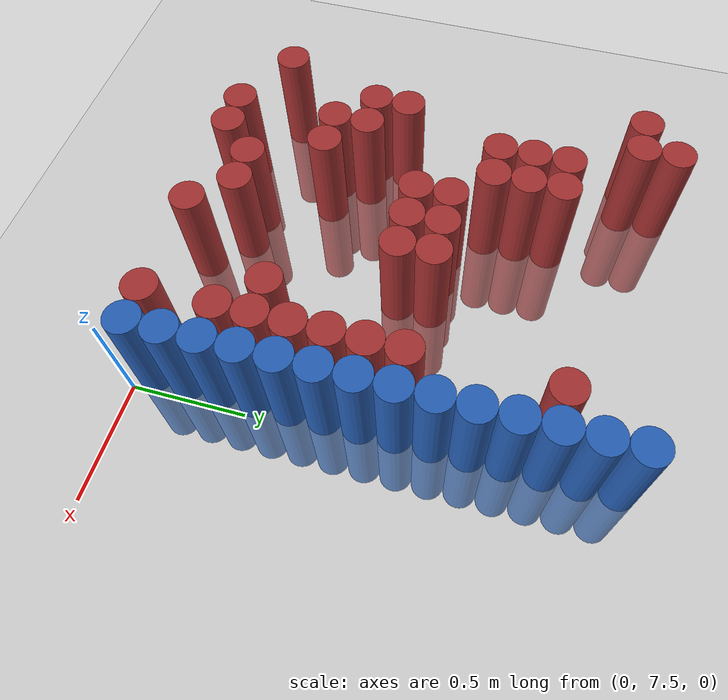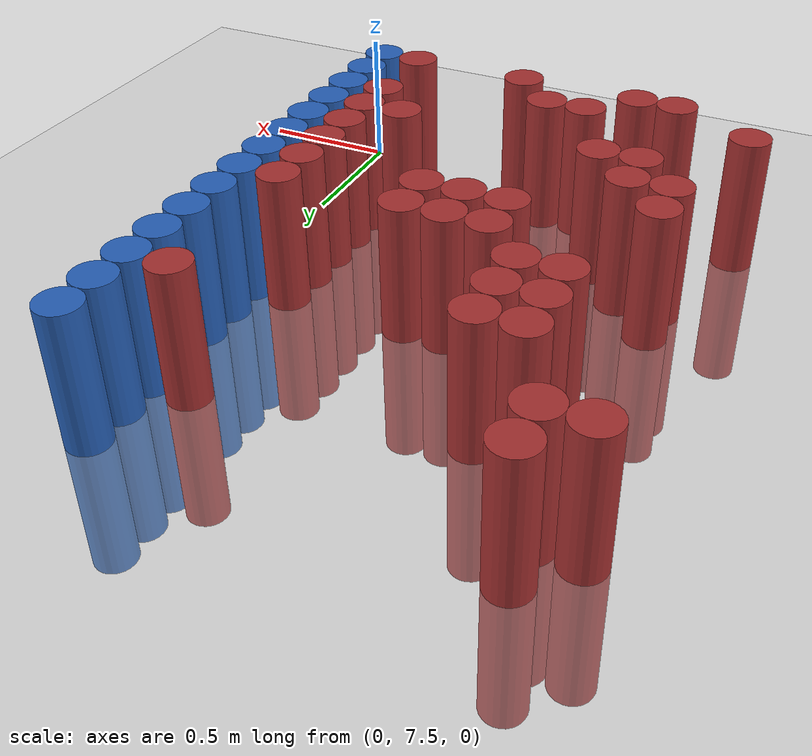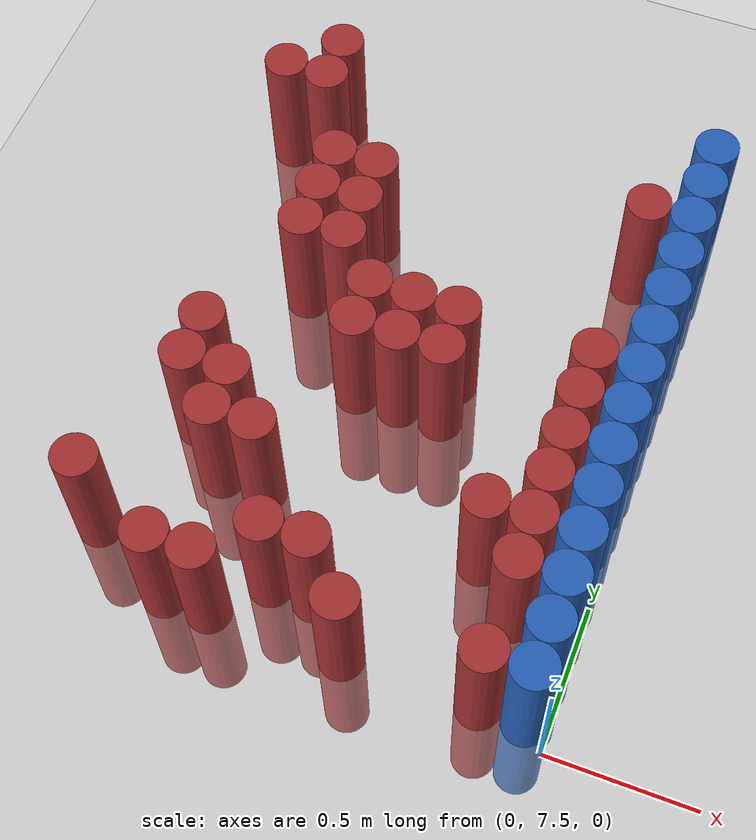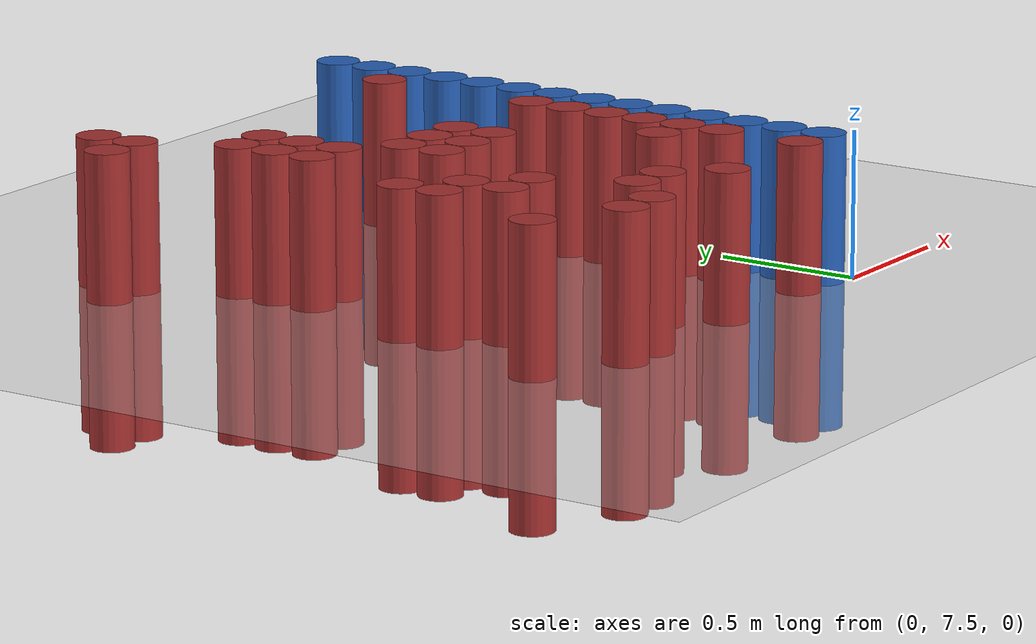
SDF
<sdf version="1.6">
 <world name="default">
  <model name="ground_plane">
   <static>1</static>
   <link name="link">
    <collision name="collision">
     <geometry><plane><normal>0 0 1</normal><size>100 100</size></plane></geometry>
     <surface><friction><ode><mu>100</mu><mu2>50</mu2></ode></friction></surface>
    </collision>
    <visual name="visual">
     <cast_shadows>0</cast_shadows>
     <geometry><plane><normal>0 0 1</normal><size>100 100</size></plane></geometry>
     <material>
      <script><uri>file://media/materials/scripts/gazebo.material</uri><name>Gazebo/Grey</name></script>
     </material>
    </visual>
   </link>
  </model>
  <model name="unit_cylinder_221">
   <static>1</static>
   <pose>-1.575000 7.725000 0.000000 0.000000 0.000000 0.000000</pose>
   <link name="link">
    <inertial>
     <mass>1</mass>
     <inertia><ixx>0.145833</ixx><ixy>0</ixy><ixz>0</ixz><iyy>0.145833</iyy><iyz>0</iyz><izz>0.125</izz></inertia>
    </inertial>
    <collision name="collision">
     <geometry><cylinder><radius>0.075000</radius><length>1</length></cylinder></geometry>
    </collision>
    <visual name="visual">
     <geometry><cylinder><radius>0.075000</radius><length>1</length></cylinder></geometry>
     <material>
      <ambient>0.648000 0.192000 0.192000 1</ambient>
      <diffuse>0.648000 0.192000 0.192000 1</diffuse>
     </material>
     <material>
      <script><name>Gazebo/Grey</name><uri>file://media/materials/scripts/gazebo.material</uri></script>
     </material>
    </visual>
   </link>
  </model>
  <model name="unit_cylinder_222">
   <static>1</static>
   <pose>-1.575000 9.375000 0.000000 0.000000 0.000000 0.000000</pose>
   <link name="link">
    <inertial>
     <mass>1</mass>
     <inertia><ixx>0.145833</ixx><ixy>0</ixy><ixz>0</ixz><iyy>0.145833</iyy><iyz>0</iyz><izz>0.125</izz></inertia>
    </inertial>
    <collision name="collision">
     <geometry><cylinder><radius>0.075000</radius><length>1</length></cylinder></geometry>
    </collision>
    <visual name="visual">
     <geometry><cylinder><radius>0.075000</radius><length>1</length></cylinder></geometry>
     <material>
      <ambient>0.648000 0.192000 0.192000 1</ambient>
      <diffuse>0.648000 0.192000 0.192000 1</diffuse>
     </material>
     <material>
      <script><name>Gazebo/Grey</name><uri>file://media/materials/scripts/gazebo.material</uri></script>
     </material>
    </visual>
   </link>
  </model>
  <model name="unit_cylinder_229">
   <static>1</static>
   <pose>-1.425000 8.175000 0.000000 0.000000 0.000000 0.000000</pose>
   <link name="link">
    <inertial>
     <mass>1</mass>
     <inertia><ixx>0.145833</ixx><ixy>0</ixy><ixz>0</ixz><iyy>0.145833</iyy><iyz>0</iyz><izz>0.125</izz></inertia>
    </inertial>
    <collision name="collision">
     <geometry><cylinder><radius>0.075000</radius><length>1</length></cylinder></geometry>
    </collision>
    <visual name="visual">
     <geometry><cylinder><radius>0.075000</radius><length>1</length></cylinder></geometry>
     <material>
      <ambient>0.648000 0.192000 0.192000 1</ambient>
      <diffuse>0.648000 0.192000 0.192000 1</diffuse>
     </material>
     <material>
      <script><name>Gazebo/Grey</name><uri>file://media/materials/scripts/gazebo.material</uri></script>
     </material>
    </visual>
   </link>
  </model>
  <model name="unit_cylinder_230">
   <static>1</static>
   <pose>-1.425000 8.325000 0.000000 0.000000 0.000000 0.000000</pose>
   <link name="link">
    <inertial>
     <mass>1</mass>
     <inertia><ixx>0.145833</ixx><ixy>0</ixy><ixz>0</ixz><iyy>0.145833</iyy><iyz>0</iyz><izz>0.125</izz></inertia>
    </inertial>
    <collision name="collision">
     <geometry><cylinder><radius>0.075000</radius><length>1</length></cylinder></geometry>
    </collision>
    <visual name="visual">
     <geometry><cylinder><radius>0.075000</radius><length>1</length></cylinder></geometry>
     <material>
      <ambient>0.648000 0.192000 0.192000 1</ambient>
      <diffuse>0.648000 0.192000 0.192000 1</diffuse>
     </material>
     <material>
      <script><name>Gazebo/Grey</name><uri>file://media/materials/scripts/gazebo.material</uri></script>
     </material>
    </visual>
   </link>
  </model>
  <model name="unit_cylinder_231">
   <static>1</static>
   <pose>-1.425000 9.375000 0.000000 0.000000 0.000000 0.000000</pose>
   <link name="link">
    <inertial>
     <mass>1</mass>
     <inertia><ixx>0.145833</ixx><ixy>0</ixy><ixz>0</ixz><iyy>0.145833</iyy><iyz>0</iyz><izz>0.125</izz></inertia>
    </inertial>
    <collision name="collision">
     <geometry><cylinder><radius>0.075000</radius><length>1</length></cylinder></geometry>
    </collision>
    <visual name="visual">
     <geometry><cylinder><radius>0.075000</radius><length>1</length></cylinder></geometry>
     <material>
      <ambient>0.648000 0.192000 0.192000 1</ambient>
      <diffuse>0.648000 0.192000 0.192000 1</diffuse>
     </material>
     <material>
      <script><name>Gazebo/Grey</name><uri>file://media/materials/scripts/gazebo.material</uri></script>
     </material>
    </visual>
   </link>
  </model>
  <model name="unit_cylinder_232">
   <static>1</static>
   <pose>-1.425000 9.525000 0.000000 0.000000 0.000000 0.000000</pose>
   <link name="link">
    <inertial>
     <mass>1</mass>
     <inertia><ixx>0.145833</ixx><ixy>0</ixy><ixz>0</ixz><iyy>0.145833</iyy><iyz>0</iyz><izz>0.125</izz></inertia>
    </inertial>
    <collision name="collision">
     <geometry><cylinder><radius>0.075000</radius><length>1</length></cylinder></geometry>
    </collision>
    <visual name="visual">
     <geometry><cylinder><radius>0.075000</radius><length>1</length></cylinder></geometry>
     <material>
      <ambient>0.648000 0.192000 0.192000 1</ambient>
      <diffuse>0.648000 0.192000 0.192000 1</diffuse>
     </material>
     <material>
      <script><name>Gazebo/Grey</name><uri>file://media/materials/scripts/gazebo.material</uri></script>
     </material>
    </visual>
   </link>
  </model>
  <model name="unit_cylinder_238">
   <static>1</static>
   <pose>-1.275000 7.575000 0.000000 0.000000 0.000000 0.000000</pose>
   <link name="link">
    <inertial>
     <mass>1</mass>
     <inertia><ixx>0.145833</ixx><ixy>0</ixy><ixz>0</ixz><iyy>0.145833</iyy><iyz>0</iyz><izz>0.125</izz></inertia>
    </inertial>
    <collision name="collision">
     <geometry><cylinder><radius>0.075000</radius><length>1</length></cylinder></geometry>
    </collision>
    <visual name="visual">
     <geometry><cylinder><radius>0.075000</radius><length>1</length></cylinder></geometry>
     <material>
      <ambient>0.648000 0.192000 0.192000 1</ambient>
      <diffuse>0.648000 0.192000 0.192000 1</diffuse>
     </material>
     <material>
      <script><name>Gazebo/Grey</name><uri>file://media/materials/scripts/gazebo.material</uri></script>
     </material>
    </visual>
   </link>
  </model>
  <model name="unit_cylinder_239">
   <static>1</static>
   <pose>-1.275000 8.025000 0.000000 0.000000 0.000000 0.000000</pose>
   <link name="link">
    <inertial>
     <mass>1</mass>
     <inertia><ixx>0.145833</ixx><ixy>0</ixy><ixz>0</ixz><iyy>0.145833</iyy><iyz>0</iyz><izz>0.125</izz></inertia>
    </inertial>
    <collision name="collision">
     <geometry><cylinder><radius>0.075000</radius><length>1</length></cylinder></geometry>
    </collision>
    <visual name="visual">
     <geometry><cylinder><radius>0.075000</radius><length>1</length></cylinder></geometry>
     <material>
      <ambient>0.648000 0.192000 0.192000 1</ambient>
      <diffuse>0.648000 0.192000 0.192000 1</diffuse>
     </material>
     <material>
      <script><name>Gazebo/Grey</name><uri>file://media/materials/scripts/gazebo.material</uri></script>
     </material>
    </visual>
   </link>
  </model>
  <model name="unit_cylinder_240">
   <static>1</static>
   <pose>-1.275000 8.175000 0.000000 0.000000 0.000000 0.000000</pose>
   <link name="link">
    <inertial>
     <mass>1</mass>
     <inertia><ixx>0.145833</ixx><ixy>0</ixy><ixz>0</ixz><iyy>0.145833</iyy><iyz>0</iyz><izz>0.125</izz></inertia>
    </inertial>
    <collision name="collision">
     <geometry><cylinder><radius>0.075000</radius><length>1</length></cylinder></geometry>
    </collision>
    <visual name="visual">
     <geometry><cylinder><radius>0.075000</radius><length>1</length></cylinder></geometry>
     <material>
      <ambient>0.648000 0.192000 0.192000 1</ambient>
      <diffuse>0.648000 0.192000 0.192000 1</diffuse>
     </material>
     <material>
      <script><name>Gazebo/Grey</name><uri>file://media/materials/scripts/gazebo.material</uri></script>
     </material>
    </visual>
   </link>
  </model>
  <model name="unit_cylinder_241">
   <static>1</static>
   <pose>-1.275000 8.775000 0.000000 0.000000 0.000000 0.000000</pose>
   <link name="link">
    <inertial>
     <mass>1</mass>
     <inertia><ixx>0.145833</ixx><ixy>0</ixy><ixz>0</ixz><iyy>0.145833</iyy><iyz>0</iyz><izz>0.125</izz></inertia>
    </inertial>
    <collision name="collision">
     <geometry><cylinder><radius>0.075000</radius><length>1</length></cylinder></geometry>
    </collision>
    <visual name="visual">
     <geometry><cylinder><radius>0.075000</radius><length>1</length></cylinder></geometry>
     <material>
      <ambient>0.648000 0.192000 0.192000 1</ambient>
      <diffuse>0.648000 0.192000 0.192000 1</diffuse>
     </material>
     <material>
      <script><name>Gazebo/Grey</name><uri>file://media/materials/scripts/gazebo.material</uri></script>
     </material>
    </visual>
   </link>
  </model>
  <model name="unit_cylinder_242">
   <static>1</static>
   <pose>-1.275000 8.925000 0.000000 0.000000 0.000000 0.000000</pose>
   <link name="link">
    <inertial>
     <mass>1</mass>
     <inertia><ixx>0.145833</ixx><ixy>0</ixy><ixz>0</ixz><iyy>0.145833</iyy><iyz>0</iyz><izz>0.125</izz></inertia>
    </inertial>
    <collision name="collision">
     <geometry><cylinder><radius>0.075000</radius><length>1</length></cylinder></geometry>
    </collision>
    <visual name="visual">
     <geometry><cylinder><radius>0.075000</radius><length>1</length></cylinder></geometry>
     <material>
      <ambient>0.648000 0.192000 0.192000 1</ambient>
      <diffuse>0.648000 0.192000 0.192000 1</diffuse>
     </material>
     <material>
      <script><name>Gazebo/Grey</name><uri>file://media/materials/scripts/gazebo.material</uri></script>
     </material>
    </visual>
   </link>
  </model>
  <model name="unit_cylinder_243">
   <static>1</static>
   <pose>-1.275000 9.075000 0.000000 0.000000 0.000000 0.000000</pose>
   <link name="link">
    <inertial>
     <mass>1</mass>
     <inertia><ixx>0.145833</ixx><ixy>0</ixy><ixz>0</ixz><iyy>0.145833</iyy><iyz>0</iyz><izz>0.125</izz></inertia>
    </inertial>
    <collision name="collision">
     <geometry><cylinder><radius>0.075000</radius><length>1</length></cylinder></geometry>
    </collision>
    <visual name="visual">
     <geometry><cylinder><radius>0.075000</radius><length>1</length></cylinder></geometry>
     <material>
      <ambient>0.648000 0.192000 0.192000 1</ambient>
      <diffuse>0.648000 0.192000 0.192000 1</diffuse>
     </material>
     <material>
      <script><name>Gazebo/Grey</name><uri>file://media/materials/scripts/gazebo.material</uri></script>
     </material>
    </visual>
   </link>
  </model>
  <model name="unit_cylinder_251">
   <static>1</static>
   <pose>-1.125000 7.575000 0.000000 0.000000 0.000000 0.000000</pose>
   <link name="link">
    <inertial>
     <mass>1</mass>
     <inertia><ixx>0.145833</ixx><ixy>0</ixy><ixz>0</ixz><iyy>0.145833</iyy><iyz>0</iyz><izz>0.125</izz></inertia>
    </inertial>
    <collision name="collision">
     <geometry><cylinder><radius>0.075000</radius><length>1</length></cylinder></geometry>
    </collision>
    <visual name="visual">
     <geometry><cylinder><radius>0.075000</radius><length>1</length></cylinder></geometry>
     <material>
      <ambient>0.648000 0.192000 0.192000 1</ambient>
      <diffuse>0.648000 0.192000 0.192000 1</diffuse>
     </material>
     <material>
      <script><name>Gazebo/Grey</name><uri>file://media/materials/scripts/gazebo.material</uri></script>
     </material>
    </visual>
   </link>
  </model>
  <model name="unit_cylinder_252">
   <static>1</static>
   <pose>-1.125000 8.025000 0.000000 0.000000 0.000000 0.000000</pose>
   <link name="link">
    <inertial>
     <mass>1</mass>
     <inertia><ixx>0.145833</ixx><ixy>0</ixy><ixz>0</ixz><iyy>0.145833</iyy><iyz>0</iyz><izz>0.125</izz></inertia>
    </inertial>
    <collision name="collision">
     <geometry><cylinder><radius>0.075000</radius><length>1</length></cylinder></geometry>
    </collision>
    <visual name="visual">
     <geometry><cylinder><radius>0.075000</radius><length>1</length></cylinder></geometry>
     <material>
      <ambient>0.648000 0.192000 0.192000 1</ambient>
      <diffuse>0.648000 0.192000 0.192000 1</diffuse>
     </material>
     <material>
      <script><name>Gazebo/Grey</name><uri>file://media/materials/scripts/gazebo.material</uri></script>
     </material>
    </visual>
   </link>
  </model>
  <model name="unit_cylinder_253">
   <static>1</static>
   <pose>-1.125000 8.775000 0.000000 0.000000 0.000000 0.000000</pose>
   <link name="link">
    <inertial>
     <mass>1</mass>
     <inertia><ixx>0.145833</ixx><ixy>0</ixy><ixz>0</ixz><iyy>0.145833</iyy><iyz>0</iyz><izz>0.125</izz></inertia>
    </inertial>
    <collision name="collision">
     <geometry><cylinder><radius>0.075000</radius><length>1</length></cylinder></geometry>
    </collision>
    <visual name="visual">
     <geometry><cylinder><radius>0.075000</radius><length>1</length></cylinder></geometry>
     <material>
      <ambient>0.648000 0.192000 0.192000 1</ambient>
      <diffuse>0.648000 0.192000 0.192000 1</diffuse>
     </material>
     <material>
      <script><name>Gazebo/Grey</name><uri>file://media/materials/scripts/gazebo.material</uri></script>
     </material>
    </visual>
   </link>
  </model>
  <model name="unit_cylinder_254">
   <static>1</static>
   <pose>-1.125000 8.925000 0.000000 0.000000 0.000000 0.000000</pose>
   <link name="link">
    <inertial>
     <mass>1</mass>
     <inertia><ixx>0.145833</ixx><ixy>0</ixy><ixz>0</ixz><iyy>0.145833</iyy><iyz>0</iyz><izz>0.125</izz></inertia>
    </inertial>
    <collision name="collision">
     <geometry><cylinder><radius>0.075000</radius><length>1</length></cylinder></geometry>
    </collision>
    <visual name="visual">
     <geometry><cylinder><radius>0.075000</radius><length>1</length></cylinder></geometry>
     <material>
      <ambient>0.648000 0.192000 0.192000 1</ambient>
      <diffuse>0.648000 0.192000 0.192000 1</diffuse>
     </material>
     <material>
      <script><name>Gazebo/Grey</name><uri>file://media/materials/scripts/gazebo.material</uri></script>
     </material>
    </visual>
   </link>
  </model>
  <model name="unit_cylinder_255">
   <static>1</static>
   <pose>-1.125000 9.075000 0.000000 0.000000 0.000000 0.000000</pose>
   <link name="link">
    <inertial>
     <mass>1</mass>
     <inertia><ixx>0.145833</ixx><ixy>0</ixy><ixz>0</ixz><iyy>0.145833</iyy><iyz>0</iyz><izz>0.125</izz></inertia>
    </inertial>
    <collision name="collision">
     <geometry><cylinder><radius>0.075000</radius><length>1</length></cylinder></geometry>
    </collision>
    <visual name="visual">
     <geometry><cylinder><radius>0.075000</radius><length>1</length></cylinder></geometry>
     <material>
      <ambient>0.648000 0.192000 0.192000 1</ambient>
      <diffuse>0.648000 0.192000 0.192000 1</diffuse>
     </material>
     <material>
      <script><name>Gazebo/Grey</name><uri>file://media/materials/scripts/gazebo.material</uri></script>
     </material>
    </visual>
   </link>
  </model>
  <model name="unit_cylinder_263">
   <static>1</static>
   <pose>-0.975000 7.725000 0.000000 0.000000 0.000000 0.000000</pose>
   <link name="link">
    <inertial>
     <mass>1</mass>
     <inertia><ixx>0.145833</ixx><ixy>0</ixy><ixz>0</ixz><iyy>0.145833</iyy><iyz>0</iyz><izz>0.125</izz></inertia>
    </inertial>
    <collision name="collision">
     <geometry><cylinder><radius>0.075000</radius><length>1</length></cylinder></geometry>
    </collision>
    <visual name="visual">
     <geometry><cylinder><radius>0.075000</radius><length>1</length></cylinder></geometry>
     <material>
      <ambient>0.648000 0.192000 0.192000 1</ambient>
      <diffuse>0.648000 0.192000 0.192000 1</diffuse>
     </material>
     <material>
      <script><name>Gazebo/Grey</name><uri>file://media/materials/scripts/gazebo.material</uri></script>
     </material>
    </visual>
   </link>
  </model>
  <model name="unit_cylinder_264">
   <static>1</static>
   <pose>-0.975000 8.475000 0.000000 0.000000 0.000000 0.000000</pose>
   <link name="link">
    <inertial>
     <mass>1</mass>
     <inertia><ixx>0.145833</ixx><ixy>0</ixy><ixz>0</ixz><iyy>0.145833</iyy><iyz>0</iyz><izz>0.125</izz></inertia>
    </inertial>
    <collision name="collision">
     <geometry><cylinder><radius>0.075000</radius><length>1</length></cylinder></geometry>
    </collision>
    <visual name="visual">
     <geometry><cylinder><radius>0.075000</radius><length>1</length></cylinder></geometry>
     <material>
      <ambient>0.648000 0.192000 0.192000 1</ambient>
      <diffuse>0.648000 0.192000 0.192000 1</diffuse>
     </material>
     <material>
      <script><name>Gazebo/Grey</name><uri>file://media/materials/scripts/gazebo.material</uri></script>
     </material>
    </visual>
   </link>
  </model>
  <model name="unit_cylinder_265">
   <static>1</static>
   <pose>-0.975000 8.625000 0.000000 0.000000 0.000000 0.000000</pose>
   <link name="link">
    <inertial>
     <mass>1</mass>
     <inertia><ixx>0.145833</ixx><ixy>0</ixy><ixz>0</ixz><iyy>0.145833</iyy><iyz>0</iyz><izz>0.125</izz></inertia>
    </inertial>
    <collision name="collision">
     <geometry><cylinder><radius>0.075000</radius><length>1</length></cylinder></geometry>
    </collision>
    <visual name="visual">
     <geometry><cylinder><radius>0.075000</radius><length>1</length></cylinder></geometry>
     <material>
      <ambient>0.648000 0.192000 0.192000 1</ambient>
      <diffuse>0.648000 0.192000 0.192000 1</diffuse>
     </material>
     <material>
      <script><name>Gazebo/Grey</name><uri>file://media/materials/scripts/gazebo.material</uri></script>
     </material>
    </visual>
   </link>
  </model>
  <model name="unit_cylinder_270">
   <static>1</static>
   <pose>-0.825000 7.725000 0.000000 0.000000 0.000000 0.000000</pose>
   <link name="link">
    <inertial>
     <mass>1</mass>
     <inertia><ixx>0.145833</ixx><ixy>0</ixy><ixz>0</ixz><iyy>0.145833</iyy><iyz>0</iyz><izz>0.125</izz></inertia>
    </inertial>
    <collision name="collision">
     <geometry><cylinder><radius>0.075000</radius><length>1</length></cylinder></geometry>
    </collision>
    <visual name="visual">
     <geometry><cylinder><radius>0.075000</radius><length>1</length></cylinder></geometry>
     <material>
      <ambient>0.648000 0.192000 0.192000 1</ambient>
      <diffuse>0.648000 0.192000 0.192000 1</diffuse>
     </material>
     <material>
      <script><name>Gazebo/Grey</name><uri>file://media/materials/scripts/gazebo.material</uri></script>
     </material>
    </visual>
   </link>
  </model>
  <model name="unit_cylinder_271">
   <static>1</static>
   <pose>-0.825000 8.475000 0.000000 0.000000 0.000000 0.000000</pose>
   <link name="link">
    <inertial>
     <mass>1</mass>
     <inertia><ixx>0.145833</ixx><ixy>0</ixy><ixz>0</ixz><iyy>0.145833</iyy><iyz>0</iyz><izz>0.125</izz></inertia>
    </inertial>
    <collision name="collision">
     <geometry><cylinder><radius>0.075000</radius><length>1</length></cylinder></geometry>
    </collision>
    <visual name="visual">
     <geometry><cylinder><radius>0.075000</radius><length>1</length></cylinder></geometry>
     <material>
      <ambient>0.648000 0.192000 0.192000 1</ambient>
      <diffuse>0.648000 0.192000 0.192000 1</diffuse>
     </material>
     <material>
      <script><name>Gazebo/Grey</name><uri>file://media/materials/scripts/gazebo.material</uri></script>
     </material>
    </visual>
   </link>
  </model>
  <model name="unit_cylinder_272">
   <static>1</static>
   <pose>-0.825000 8.625000 0.000000 0.000000 0.000000 0.000000</pose>
   <link name="link">
    <inertial>
     <mass>1</mass>
     <inertia><ixx>0.145833</ixx><ixy>0</ixy><ixz>0</ixz><iyy>0.145833</iyy><iyz>0</iyz><izz>0.125</izz></inertia>
    </inertial>
    <collision name="collision">
     <geometry><cylinder><radius>0.075000</radius><length>1</length></cylinder></geometry>
    </collision>
    <visual name="visual">
     <geometry><cylinder><radius>0.075000</radius><length>1</length></cylinder></geometry>
     <material>
      <ambient>0.648000 0.192000 0.192000 1</ambient>
      <diffuse>0.648000 0.192000 0.192000 1</diffuse>
     </material>
     <material>
      <script><name>Gazebo/Grey</name><uri>file://media/materials/scripts/gazebo.material</uri></script>
     </material>
    </visual>
   </link>
  </model>
  <model name="unit_cylinder_278">
   <static>1</static>
   <pose>-0.675000 7.575000 0.000000 0.000000 0.000000 0.000000</pose>
   <link name="link">
    <inertial>
     <mass>1</mass>
     <inertia><ixx>0.145833</ixx><ixy>0</ixy><ixz>0</ixz><iyy>0.145833</iyy><iyz>0</iyz><izz>0.125</izz></inertia>
    </inertial>
    <collision name="collision">
     <geometry><cylinder><radius>0.075000</radius><length>1</length></cylinder></geometry>
    </collision>
    <visual name="visual">
     <geometry><cylinder><radius>0.075000</radius><length>1</length></cylinder></geometry>
     <material>
      <ambient>0.648000 0.192000 0.192000 1</ambient>
      <diffuse>0.648000 0.192000 0.192000 1</diffuse>
     </material>
     <material>
      <script><name>Gazebo/Grey</name><uri>file://media/materials/scripts/gazebo.material</uri></script>
     </material>
    </visual>
   </link>
  </model>
  <model name="unit_cylinder_279">
   <static>1</static>
   <pose>-0.675000 8.475000 0.000000 0.000000 0.000000 0.000000</pose>
   <link name="link">
    <inertial>
     <mass>1</mass>
     <inertia><ixx>0.145833</ixx><ixy>0</ixy><ixz>0</ixz><iyy>0.145833</iyy><iyz>0</iyz><izz>0.125</izz></inertia>
    </inertial>
    <collision name="collision">
     <geometry><cylinder><radius>0.075000</radius><length>1</length></cylinder></geometry>
    </collision>
    <visual name="visual">
     <geometry><cylinder><radius>0.075000</radius><length>1</length></cylinder></geometry>
     <material>
      <ambient>0.648000 0.192000 0.192000 1</ambient>
      <diffuse>0.648000 0.192000 0.192000 1</diffuse>
     </material>
     <material>
      <script><name>Gazebo/Grey</name><uri>file://media/materials/scripts/gazebo.material</uri></script>
     </material>
    </visual>
   </link>
  </model>
  <model name="unit_cylinder_280">
   <static>1</static>
   <pose>-0.675000 8.625000 0.000000 0.000000 0.000000 0.000000</pose>
   <link name="link">
    <inertial>
     <mass>1</mass>
     <inertia><ixx>0.145833</ixx><ixy>0</ixy><ixz>0</ixz><iyy>0.145833</iyy><iyz>0</iyz><izz>0.125</izz></inertia>
    </inertial>
    <collision name="collision">
     <geometry><cylinder><radius>0.075000</radius><length>1</length></cylinder></geometry>
    </collision>
    <visual name="visual">
     <geometry><cylinder><radius>0.075000</radius><length>1</length></cylinder></geometry>
     <material>
      <ambient>0.648000 0.192000 0.192000 1</ambient>
      <diffuse>0.648000 0.192000 0.192000 1</diffuse>
     </material>
     <material>
      <script><name>Gazebo/Grey</name><uri>file://media/materials/scripts/gazebo.material</uri></script>
     </material>
    </visual>
   </link>
  </model>
  <model name="unit_cylinder_295">
   <static>1</static>
   <pose>-0.375000 8.025000 0.000000 0.000000 0.000000 0.000000</pose>
   <link name="link">
    <inertial>
     <mass>1</mass>
     <inertia><ixx>0.145833</ixx><ixy>0</ixy><ixz>0</ixz><iyy>0.145833</iyy><iyz>0</iyz><izz>0.125</izz></inertia>
    </inertial>
    <collision name="collision">
     <geometry><cylinder><radius>0.075000</radius><length>1</length></cylinder></geometry>
    </collision>
    <visual name="visual">
     <geometry><cylinder><radius>0.075000</radius><length>1</length></cylinder></geometry>
     <material>
      <ambient>0.648000 0.192000 0.192000 1</ambient>
      <diffuse>0.648000 0.192000 0.192000 1</diffuse>
     </material>
     <material>
      <script><name>Gazebo/Grey</name><uri>file://media/materials/scripts/gazebo.material</uri></script>
     </material>
    </visual>
   </link>
  </model>
  <model name="unit_cylinder_302">
   <static>1</static>
   <pose>-0.225000 7.575000 0.000000 0.000000 0.000000 0.000000</pose>
   <link name="link">
    <inertial>
     <mass>1</mass>
     <inertia><ixx>0.145833</ixx><ixy>0</ixy><ixz>0</ixz><iyy>0.145833</iyy><iyz>0</iyz><izz>0.125</izz></inertia>
    </inertial>
    <collision name="collision">
     <geometry><cylinder><radius>0.075000</radius><length>1</length></cylinder></geometry>
    </collision>
    <visual name="visual">
     <geometry><cylinder><radius>0.075000</radius><length>1</length></cylinder></geometry>
     <material>
      <ambient>0.648000 0.192000 0.192000 1</ambient>
      <diffuse>0.648000 0.192000 0.192000 1</diffuse>
     </material>
     <material>
      <script><name>Gazebo/Grey</name><uri>file://media/materials/scripts/gazebo.material</uri></script>
     </material>
    </visual>
   </link>
  </model>
  <model name="unit_cylinder_303">
   <static>1</static>
   <pose>-0.225000 7.875000 0.000000 0.000000 0.000000 0.000000</pose>
   <link name="link">
    <inertial>
     <mass>1</mass>
     <inertia><ixx>0.145833</ixx><ixy>0</ixy><ixz>0</ixz><iyy>0.145833</iyy><iyz>0</iyz><izz>0.125</izz></inertia>
    </inertial>
    <collision name="collision">
     <geometry><cylinder><radius>0.075000</radius><length>1</length></cylinder></geometry>
    </collision>
    <visual name="visual">
     <geometry><cylinder><radius>0.075000</radius><length>1</length></cylinder></geometry>
     <material>
      <ambient>0.648000 0.192000 0.192000 1</ambient>
      <diffuse>0.648000 0.192000 0.192000 1</diffuse>
     </material>
     <material>
      <script><name>Gazebo/Grey</name><uri>file://media/materials/scripts/gazebo.material</uri></script>
     </material>
    </visual>
   </link>
  </model>
  <model name="unit_cylinder_304">
   <static>1</static>
   <pose>-0.225000 8.025000 0.000000 0.000000 0.000000 0.000000</pose>
   <link name="link">
    <inertial>
     <mass>1</mass>
     <inertia><ixx>0.145833</ixx><ixy>0</ixy><ixz>0</ixz><iyy>0.145833</iyy><iyz>0</iyz><izz>0.125</izz></inertia>
    </inertial>
    <collision name="collision">
     <geometry><cylinder><radius>0.075000</radius><length>1</length></cylinder></geometry>
    </collision>
    <visual name="visual">
     <geometry><cylinder><radius>0.075000</radius><length>1</length></cylinder></geometry>
     <material>
      <ambient>0.648000 0.192000 0.192000 1</ambient>
      <diffuse>0.648000 0.192000 0.192000 1</diffuse>
     </material>
     <material>
      <script><name>Gazebo/Grey</name><uri>file://media/materials/scripts/gazebo.material</uri></script>
     </material>
    </visual>
   </link>
  </model>
  <model name="unit_cylinder_305">
   <static>1</static>
   <pose>-0.225000 8.175000 0.000000 0.000000 0.000000 0.000000</pose>
   <link name="link">
    <inertial>
     <mass>1</mass>
     <inertia><ixx>0.145833</ixx><ixy>0</ixy><ixz>0</ixz><iyy>0.145833</iyy><iyz>0</iyz><izz>0.125</izz></inertia>
    </inertial>
    <collision name="collision">
     <geometry><cylinder><radius>0.075000</radius><length>1</length></cylinder></geometry>
    </collision>
    <visual name="visual">
     <geometry><cylinder><radius>0.075000</radius><length>1</length></cylinder></geometry>
     <material>
      <ambient>0.648000 0.192000 0.192000 1</ambient>
      <diffuse>0.648000 0.192000 0.192000 1</diffuse>
     </material>
     <material>
      <script><name>Gazebo/Grey</name><uri>file://media/materials/scripts/gazebo.material</uri></script>
     </material>
    </visual>
   </link>
  </model>
  <model name="unit_cylinder_306">
   <static>1</static>
   <pose>-0.225000 8.325000 0.000000 0.000000 0.000000 0.000000</pose>
   <link name="link">
    <inertial>
     <mass>1</mass>
     <inertia><ixx>0.145833</ixx><ixy>0</ixy><ixz>0</ixz><iyy>0.145833</iyy><iyz>0</iyz><izz>0.125</izz></inertia>
    </inertial>
    <collision name="collision">
     <geometry><cylinder><radius>0.075000</radius><length>1</length></cylinder></geometry>
    </collision>
    <visual name="visual">
     <geometry><cylinder><radius>0.075000</radius><length>1</length></cylinder></geometry>
     <material>
      <ambient>0.648000 0.192000 0.192000 1</ambient>
      <diffuse>0.648000 0.192000 0.192000 1</diffuse>
     </material>
     <material>
      <script><name>Gazebo/Grey</name><uri>file://media/materials/scripts/gazebo.material</uri></script>
     </material>
    </visual>
   </link>
  </model>
  <model name="unit_cylinder_307">
   <static>1</static>
   <pose>-0.225000 8.475000 0.000000 0.000000 0.000000 0.000000</pose>
   <link name="link">
    <inertial>
     <mass>1</mass>
     <inertia><ixx>0.145833</ixx><ixy>0</ixy><ixz>0</ixz><iyy>0.145833</iyy><iyz>0</iyz><izz>0.125</izz></inertia>
    </inertial>
    <collision name="collision">
     <geometry><cylinder><radius>0.075000</radius><length>1</length></cylinder></geometry>
    </collision>
    <visual name="visual">
     <geometry><cylinder><radius>0.075000</radius><length>1</length></cylinder></geometry>
     <material>
      <ambient>0.648000 0.192000 0.192000 1</ambient>
      <diffuse>0.648000 0.192000 0.192000 1</diffuse>
     </material>
     <material>
      <script><name>Gazebo/Grey</name><uri>file://media/materials/scripts/gazebo.material</uri></script>
     </material>
    </visual>
   </link>
  </model>
  <model name="unit_cylinder_308">
   <static>1</static>
   <pose>-0.225000 8.625000 0.000000 0.000000 0.000000 0.000000</pose>
   <link name="link">
    <inertial>
     <mass>1</mass>
     <inertia><ixx>0.145833</ixx><ixy>0</ixy><ixz>0</ixz><iyy>0.145833</iyy><iyz>0</iyz><izz>0.125</izz></inertia>
    </inertial>
    <collision name="collision">
     <geometry><cylinder><radius>0.075000</radius><length>1</length></cylinder></geometry>
    </collision>
    <visual name="visual">
     <geometry><cylinder><radius>0.075000</radius><length>1</length></cylinder></geometry>
     <material>
      <ambient>0.648000 0.192000 0.192000 1</ambient>
      <diffuse>0.648000 0.192000 0.192000 1</diffuse>
     </material>
     <material>
      <script><name>Gazebo/Grey</name><uri>file://media/materials/scripts/gazebo.material</uri></script>
     </material>
    </visual>
   </link>
  </model>
  <model name="unit_cylinder_309">
   <static>1</static>
   <pose>-0.225000 9.225000 0.000000 0.000000 0.000000 0.000000</pose>
   <link name="link">
    <inertial>
     <mass>1</mass>
     <inertia><ixx>0.145833</ixx><ixy>0</ixy><ixz>0</ixz><iyy>0.145833</iyy><iyz>0</iyz><izz>0.125</izz></inertia>
    </inertial>
    <collision name="collision">
     <geometry><cylinder><radius>0.075000</radius><length>1</length></cylinder></geometry>
    </collision>
    <visual name="visual">
     <geometry><cylinder><radius>0.075000</radius><length>1</length></cylinder></geometry>
     <material>
      <ambient>0.648000 0.192000 0.192000 1</ambient>
      <diffuse>0.648000 0.192000 0.192000 1</diffuse>
     </material>
     <material>
      <script><name>Gazebo/Grey</name><uri>file://media/materials/scripts/gazebo.material</uri></script>
     </material>
    </visual>
   </link>
  </model>
  <model name="unit_cylinder_326">
   <static>1</static>
   <pose>-0.075000 7.575000 0.000000 0.000000 0.000000 0.000000</pose>
   <link name="link">
    <inertial>
     <mass>1</mass>
     <inertia><ixx>0.145833</ixx><ixy>0</ixy><ixz>0</ixz><iyy>0.145833</iyy><iyz>0</iyz><izz>0.125</izz></inertia>
    </inertial>
    <collision name="collision">
     <geometry><cylinder><radius>0.075000</radius><length>1</length></cylinder></geometry>
    </collision>
    <visual name="visual">
     <geometry><cylinder><radius>0.075000</radius><length>1</length></cylinder></geometry>
     <material>
      <ambient>0.152000 0.379000 0.720000 1</ambient>
      <diffuse>0.152000 0.379000 0.720000 1</diffuse>
     </material>
     <material>
      <script><name>Gazebo/Grey</name><uri>file://media/materials/scripts/gazebo.material</uri></script>
     </material>
    </visual>
   </link>
  </model>
  <model name="unit_cylinder_327">
   <static>1</static>
   <pose>-0.075000 7.725000 0.000000 0.000000 0.000000 0.000000</pose>
   <link name="link">
    <inertial>
     <mass>1</mass>
     <inertia><ixx>0.145833</ixx><ixy>0</ixy><ixz>0</ixz><iyy>0.145833</iyy><iyz>0</iyz><izz>0.125</izz></inertia>
    </inertial>
    <collision name="collision">
     <geometry><cylinder><radius>0.075000</radius><length>1</length></cylinder></geometry>
    </collision>
    <visual name="visual">
     <geometry><cylinder><radius>0.075000</radius><length>1</length></cylinder></geometry>
     <material>
      <ambient>0.152000 0.379000 0.720000 1</ambient>
      <diffuse>0.152000 0.379000 0.720000 1</diffuse>
     </material>
     <material>
      <script><name>Gazebo/Grey</name><uri>file://media/materials/scripts/gazebo.material</uri></script>
     </material>
    </visual>
   </link>
  </model>
  <model name="unit_cylinder_328">
   <static>1</static>
   <pose>-0.075000 7.875000 0.000000 0.000000 0.000000 0.000000</pose>
   <link name="link">
    <inertial>
     <mass>1</mass>
     <inertia><ixx>0.145833</ixx><ixy>0</ixy><ixz>0</ixz><iyy>0.145833</iyy><iyz>0</iyz><izz>0.125</izz></inertia>
    </inertial>
    <collision name="collision">
     <geometry><cylinder><radius>0.075000</radius><length>1</length></cylinder></geometry>
    </collision>
    <visual name="visual">
     <geometry><cylinder><radius>0.075000</radius><length>1</length></cylinder></geometry>
     <material>
      <ambient>0.152000 0.379000 0.720000 1</ambient>
      <diffuse>0.152000 0.379000 0.720000 1</diffuse>
     </material>
     <material>
      <script><name>Gazebo/Grey</name><uri>file://media/materials/scripts/gazebo.material</uri></script>
     </material>
    </visual>
   </link>
  </model>
  <model name="unit_cylinder_329">
   <static>1</static>
   <pose>-0.075000 8.025000 0.000000 0.000000 0.000000 0.000000</pose>
   <link name="link">
    <inertial>
     <mass>1</mass>
     <inertia><ixx>0.145833</ixx><ixy>0</ixy><ixz>0</ixz><iyy>0.145833</iyy><iyz>0</iyz><izz>0.125</izz></inertia>
    </inertial>
    <collision name="collision">
     <geometry><cylinder><radius>0.075000</radius><length>1</length></cylinder></geometry>
    </collision>
    <visual name="visual">
     <geometry><cylinder><radius>0.075000</radius><length>1</length></cylinder></geometry>
     <material>
      <ambient>0.152000 0.379000 0.720000 1</ambient>
      <diffuse>0.152000 0.379000 0.720000 1</diffuse>
     </material>
     <material>
      <script><name>Gazebo/Grey</name><uri>file://media/materials/scripts/gazebo.material</uri></script>
     </material>
    </visual>
   </link>
  </model>
  <model name="unit_cylinder_330">
   <static>1</static>
   <pose>-0.075000 8.175000 0.000000 0.000000 0.000000 0.000000</pose>
   <link name="link">
    <inertial>
     <mass>1</mass>
     <inertia><ixx>0.145833</ixx><ixy>0</ixy><ixz>0</ixz><iyy>0.145833</iyy><iyz>0</iyz><izz>0.125</izz></inertia>
    </inertial>
    <collision name="collision">
     <geometry><cylinder><radius>0.075000</radius><length>1</length></cylinder></geometry>
    </collision>
    <visual name="visual">
     <geometry><cylinder><radius>0.075000</radius><length>1</length></cylinder></geometry>
     <material>
      <ambient>0.152000 0.379000 0.720000 1</ambient>
      <diffuse>0.152000 0.379000 0.720000 1</diffuse>
     </material>
     <material>
      <script><name>Gazebo/Grey</name><uri>file://media/materials/scripts/gazebo.material</uri></script>
     </material>
    </visual>
   </link>
  </model>
  <model name="unit_cylinder_331">
   <static>1</static>
   <pose>-0.075000 8.325000 0.000000 0.000000 0.000000 0.000000</pose>
   <link name="link">
    <inertial>
     <mass>1</mass>
     <inertia><ixx>0.145833</ixx><ixy>0</ixy><ixz>0</ixz><iyy>0.145833</iyy><iyz>0</iyz><izz>0.125</izz></inertia>
    </inertial>
    <collision name="collision">
     <geometry><cylinder><radius>0.075000</radius><length>1</length></cylinder></geometry>
    </collision>
    <visual name="visual">
     <geometry><cylinder><radius>0.075000</radius><length>1</length></cylinder></geometry>
     <material>
      <ambient>0.152000 0.379000 0.720000 1</ambient>
      <diffuse>0.152000 0.379000 0.720000 1</diffuse>
     </material>
     <material>
      <script><name>Gazebo/Grey</name><uri>file://media/materials/scripts/gazebo.material</uri></script>
     </material>
    </visual>
   </link>
  </model>
  <model name="unit_cylinder_332">
   <static>1</static>
   <pose>-0.075000 8.475000 0.000000 0.000000 0.000000 0.000000</pose>
   <link name="link">
    <inertial>
     <mass>1</mass>
     <inertia><ixx>0.145833</ixx><ixy>0</ixy><ixz>0</ixz><iyy>0.145833</iyy><iyz>0</iyz><izz>0.125</izz></inertia>
    </inertial>
    <collision name="collision">
     <geometry><cylinder><radius>0.075000</radius><length>1</length></cylinder></geometry>
    </collision>
    <visual name="visual">
     <geometry><cylinder><radius>0.075000</radius><length>1</length></cylinder></geometry>
     <material>
      <ambient>0.152000 0.379000 0.720000 1</ambient>
      <diffuse>0.152000 0.379000 0.720000 1</diffuse>
     </material>
     <material>
      <script><name>Gazebo/Grey</name><uri>file://media/materials/scripts/gazebo.material</uri></script>
     </material>
    </visual>
   </link>
  </model>
  <model name="unit_cylinder_333">
   <static>1</static>
   <pose>-0.075000 8.625000 0.000000 0.000000 0.000000 0.000000</pose>
   <link name="link">
    <inertial>
     <mass>1</mass>
     <inertia><ixx>0.145833</ixx><ixy>0</ixy><ixz>0</ixz><iyy>0.145833</iyy><iyz>0</iyz><izz>0.125</izz></inertia>
    </inertial>
    <collision name="collision">
     <geometry><cylinder><radius>0.075000</radius><length>1</length></cylinder></geometry>
    </collision>
    <visual name="visual">
     <geometry><cylinder><radius>0.075000</radius><length>1</length></cylinder></geometry>
     <material>
      <ambient>0.152000 0.379000 0.720000 1</ambient>
      <diffuse>0.152000 0.379000 0.720000 1</diffuse>
     </material>
     <material>
      <script><name>Gazebo/Grey</name><uri>file://media/materials/scripts/gazebo.material</uri></script>
     </material>
    </visual>
   </link>
  </model>
  <model name="unit_cylinder_334">
   <static>1</static>
   <pose>-0.075000 8.775000 0.000000 0.000000 0.000000 0.000000</pose>
   <link name="link">
    <inertial>
     <mass>1</mass>
     <inertia><ixx>0.145833</ixx><ixy>0</ixy><ixz>0</ixz><iyy>0.145833</iyy><iyz>0</iyz><izz>0.125</izz></inertia>
    </inertial>
    <collision name="collision">
     <geometry><cylinder><radius>0.075000</radius><length>1</length></cylinder></geometry>
    </collision>
    <visual name="visual">
     <geometry><cylinder><radius>0.075000</radius><length>1</length></cylinder></geometry>
     <material>
      <ambient>0.152000 0.379000 0.720000 1</ambient>
      <diffuse>0.152000 0.379000 0.720000 1</diffuse>
     </material>
     <material>
      <script><name>Gazebo/Grey</name><uri>file://media/materials/scripts/gazebo.material</uri></script>
     </material>
    </visual>
   </link>
  </model>
  <model name="unit_cylinder_335">
   <static>1</static>
   <pose>-0.075000 8.925000 0.000000 0.000000 0.000000 0.000000</pose>
   <link name="link">
    <inertial>
     <mass>1</mass>
     <inertia><ixx>0.145833</ixx><ixy>0</ixy><ixz>0</ixz><iyy>0.145833</iyy><iyz>0</iyz><izz>0.125</izz></inertia>
    </inertial>
    <collision name="collision">
     <geometry><cylinder><radius>0.075000</radius><length>1</length></cylinder></geometry>
    </collision>
    <visual name="visual">
     <geometry><cylinder><radius>0.075000</radius><length>1</length></cylinder></geometry>
     <material>
      <ambient>0.152000 0.379000 0.720000 1</ambient>
      <diffuse>0.152000 0.379000 0.720000 1</diffuse>
     </material>
     <material>
      <script><name>Gazebo/Grey</name><uri>file://media/materials/scripts/gazebo.material</uri></script>
     </material>
    </visual>
   </link>
  </model>
  <model name="unit_cylinder_336">
   <static>1</static>
   <pose>-0.075000 9.075000 0.000000 0.000000 0.000000 0.000000</pose>
   <link name="link">
    <inertial>
     <mass>1</mass>
     <inertia><ixx>0.145833</ixx><ixy>0</ixy><ixz>0</ixz><iyy>0.145833</iyy><iyz>0</iyz><izz>0.125</izz></inertia>
    </inertial>
    <collision name="collision">
     <geometry><cylinder><radius>0.075000</radius><length>1</length></cylinder></geometry>
    </collision>
    <visual name="visual">
     <geometry><cylinder><radius>0.075000</radius><length>1</length></cylinder></geometry>
     <material>
      <ambient>0.152000 0.379000 0.720000 1</ambient>
      <diffuse>0.152000 0.379000 0.720000 1</diffuse>
     </material>
     <material>
      <script><name>Gazebo/Grey</name><uri>file://media/materials/scripts/gazebo.material</uri></script>
     </material>
    </visual>
   </link>
  </model>
  <model name="unit_cylinder_337">
   <static>1</static>
   <pose>-0.075000 9.225000 0.000000 0.000000 0.000000 0.000000</pose>
   <link name="link">
    <inertial>
     <mass>1</mass>
     <inertia><ixx>0.145833</ixx><ixy>0</ixy><ixz>0</ixz><iyy>0.145833</iyy><iyz>0</iyz><izz>0.125</izz></inertia>
    </inertial>
    <collision name="collision">
     <geometry><cylinder><radius>0.075000</radius><length>1</length></cylinder></geometry>
    </collision>
    <visual name="visual">
     <geometry><cylinder><radius>0.075000</radius><length>1</length></cylinder></geometry>
     <material>
      <ambient>0.152000 0.379000 0.720000 1</ambient>
      <diffuse>0.152000 0.379000 0.720000 1</diffuse>
     </material>
     <material>
      <script><name>Gazebo/Grey</name><uri>file://media/materials/scripts/gazebo.material</uri></script>
     </material>
    </visual>
   </link>
  </model>
  <model name="unit_cylinder_338">
   <static>1</static>
   <pose>-0.075000 9.375000 0.000000 0.000000 0.000000 0.000000</pose>
   <link name="link">
    <inertial>
     <mass>1</mass>
     <inertia><ixx>0.145833</ixx><ixy>0</ixy><ixz>0</ixz><iyy>0.145833</iyy><iyz>0</iyz><izz>0.125</izz></inertia>
    </inertial>
    <collision name="collision">
     <geometry><cylinder><radius>0.075000</radius><length>1</length></cylinder></geometry>
    </collision>
    <visual name="visual">
     <geometry><cylinder><radius>0.075000</radius><length>1</length></cylinder></geometry>
     <material>
      <ambient>0.152000 0.379000 0.720000 1</ambient>
      <diffuse>0.152000 0.379000 0.720000 1</diffuse>
     </material>
     <material>
      <script><name>Gazebo/Grey</name><uri>file://media/materials/scripts/gazebo.material</uri></script>
     </material>
    </visual>
   </link>
  </model>
  <model name="unit_cylinder_339">
   <static>1</static>
   <pose>-0.075000 9.525000 0.000000 0.000000 0.000000 0.000000</pose>
   <link name="link">
    <inertial>
     <mass>1</mass>
     <inertia><ixx>0.145833</ixx><ixy>0</ixy><ixz>0</ixz><iyy>0.145833</iyy><iyz>0</iyz><izz>0.125</izz></inertia>
    </inertial>
    <collision name="collision">
     <geometry><cylinder><radius>0.075000</radius><length>1</length></cylinder></geometry>
    </collision>
    <visual name="visual">
     <geometry><cylinder><radius>0.075000</radius><length>1</length></cylinder></geometry>
     <material>
      <ambient>0.152000 0.379000 0.720000 1</ambient>
      <diffuse>0.152000 0.379000 0.720000 1</diffuse>
     </material>
     <material>
      <script><name>Gazebo/Grey</name><uri>file://media/materials/scripts/gazebo.material</uri></script>
     </material>
    </visual>
   </link>
  </model>
 </world>
</sdf>
